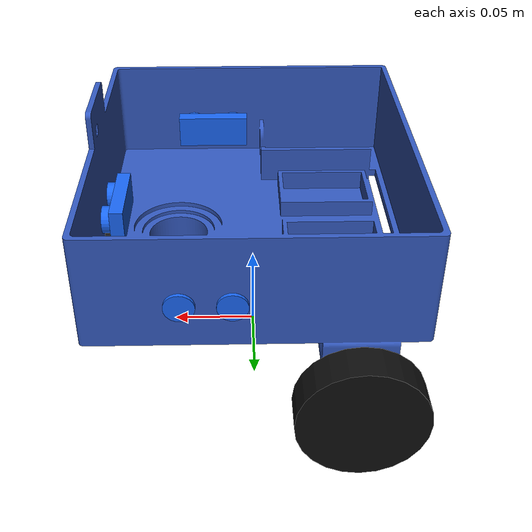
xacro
<?xml version="1.0"?>
<robot name="microbot" xmlns:xacro="http://www.ros.org/wiki/xacro">

  <!-- ===================== materials ===================== -->
  <material name="chassis_blue"><color rgba="0.20 0.35 0.75 1"/></material>
  <material name="black">       <color rgba="0.05 0.05 0.05 1"/></material>
  <material name="gray">        <color rgba="0.50 0.50 0.50 1"/></material>
  <material name="us_blue">     <color rgba="0.10 0.40 0.95 1"/></material>

  <!-- ===================== geometry constants ===================== -->
  <xacro:property name="wheel_radius" value="0.035"/>
  <xacro:property name="wheel_length" value="0.02"/>
  <!-- wheel centres in base_link: X = lateral (+X is LEFT once base_link's yaw is applied) -->
  <xacro:property name="wheel_x" value="0.1165"/>   <!-- half track  -> separation 0.233 m -->
  <xacro:property name="wheel_y" value="0.053"/>    <!-- longitudinal (behind the centre) -->
  <xacro:property name="wheel_z" value="-0.037"/>

  <!-- ===================== ground-projection root ===================== -->
  <link name="base_footprint"/>

  <!-- ===================== chassis (CAD mesh) ===================== -->
  <link name="base_link">
    <visual>
      <origin xyz="0 0 0" rpy="0 0 0"/>
      <geometry>
        <!-- mesh authored in mm -> scale to metres -->
        <mesh filename="file://$(find microbot_description)/meshes/RAJU.stl"
              scale="0.001 0.001 0.001"/>
      </geometry>
      <material name="chassis_blue"/>
    </visual>
    <collision>
      <origin xyz="0 0 0" rpy="0 0 0"/>
      <geometry>
        <mesh filename="file://$(find microbot_description)/meshes/RAJU.stl"
              scale="0.001 0.001 0.001"/>
      </geometry>
    </collision>
    <inertial>
      <origin xyz="0 0 0" rpy="0 0 0"/>
      <mass value="5.0"/>
      <inertia ixx="0.05" ixy="0" ixz="0" iyy="0.05" iyz="0" izz="0.05"/>
    </inertial>
  </link>

  <!-- the CAD's +90 deg yaw: base_link X becomes base_footprint Y -->
  <joint name="base_footprint_joint" type="fixed">
    <parent link="base_footprint"/>
    <child link="base_link"/>
    <origin xyz="0 0 0.072" rpy="0 0 1.5708"/>
  </joint>

  <!-- ===================== driven wheels ===================== -->
  <!-- axis 1 0 0 = base_link X = base_footprint +Y (left), so a POSITIVE joint angle
       rolls the robot FORWARD on both sides (standard diff-drive convention). -->
  <xacro:macro name="drive_wheel" params="link joint px">
    <link name="${link}">
      <visual>
        <origin xyz="0 0 0" rpy="0 1.570796 0"/>
        <geometry><cylinder radius="${wheel_radius}" length="${wheel_length}"/></geometry>
        <material name="black"/>
      </visual>
      <collision>
        <origin xyz="0 0 0" rpy="0 1.570796 0"/>
        <geometry><cylinder radius="${wheel_radius}" length="${wheel_length}"/></geometry>
      </collision>
      <inertial>
        <mass value="0.5"/>
        <inertia ixx="0.001" ixy="0" ixz="0" iyy="0.001" iyz="0" izz="0.001"/>
      </inertial>
    </link>
    <joint name="${joint}" type="continuous">
      <parent link="base_link"/>
      <child link="${link}"/>
      <origin xyz="${px} ${wheel_y} ${wheel_z}" rpy="0 0 0"/>
      <axis xyz="1 0 0"/>
    </joint>
  </xacro:macro>

  <!-- joint names must match the ESP32-S3 /joint_states publisher -->
  <xacro:drive_wheel link="base_back_left_wheel"  joint="base_back_left_wheel_joint"
                     px="${ wheel_x}"/>
  <xacro:drive_wheel link="base_back_right_wheel" joint="base_back_right_wheel_joint"
                     px="${-wheel_x}"/>

  <!-- ===================== front caster ball ===================== -->
  <link name="caster_wheel">
    <visual>
      <geometry><sphere radius="0.009"/></geometry>
      <material name="gray"/>
    </visual>
    <collision>
      <geometry><sphere radius="0.009"/></geometry>
    </collision>
    <inertial>
      <mass value="0.2"/>
      <inertia ixx="0.0001" ixy="0" ixz="0" iyy="0.0001" iyz="0" izz="0.0001"/>
    </inertial>
  </link>
  <joint name="caster_wheel_joint" type="fixed">
    <parent link="base_link"/>
    <child link="caster_wheel"/>
    <origin xyz="0 -0.045 -0.063" rpy="0 0 0"/>
  </joint>

  <xacro:property name="us_pitch" value="0.01316"/>   <!-- half of the 26.32 mm hole spacing -->

  <xacro:macro name="ultrasonic" params="name px py pz yaw">
    <link name="${name}">
      <!-- PCB, tucked inside the shell behind the wall -->
      <visual>
        <origin xyz="-0.012 0 0"/>
        <geometry><box size="0.008 0.045 0.020"/></geometry>
        <material name="us_blue"/>
      </visual>
      <!-- the two 16 mm transducers, seated in the two holes -->
      <visual>
        <origin xyz="-0.004 ${ us_pitch} 0" rpy="0 1.5708 0"/>
        <geometry><cylinder radius="0.008" length="0.014"/></geometry>
        <material name="us_blue"/>
      </visual>
      <visual>
        <origin xyz="-0.004 ${-us_pitch} 0" rpy="0 1.5708 0"/>
        <geometry><cylinder radius="0.008" length="0.014"/></geometry>
        <material name="us_blue"/>
      </visual>
      <inertial>
        <mass value="0.02"/>
        <inertia ixx="1e-6" ixy="0" ixz="0" iyy="1e-6" iyz="0" izz="1e-6"/>
      </inertial>
    </link>
    <joint name="${name}_joint" type="fixed">
      <parent link="base_link"/>
      <child link="${name}"/>
      <origin xyz="${px} ${py} ${pz}" rpy="0 0 ${yaw}"/>
    </joint>
  </xacro:macro>

  <!-- front: on the -Y wall, so the sensor's +X must face -Y  -> yaw -90 deg -->
  <xacro:ultrasonic name="us_front" px="0"      py="-0.090" pz="0.0139" yaw="-1.5708"/>
  <!-- left: on the +X wall, sensor +X already faces +X       -> yaw 0 -->
  <xacro:ultrasonic name="us_left"  px="0.099"  py="-0.025" pz="0.0200" yaw="0"/>
  <!-- right: on the -X wall, sensor +X must face -X          -> yaw 180 deg -->
  <xacro:ultrasonic name="us_right" px="-0.099" py="-0.025" pz="0.0200" yaw="3.14159"/>

  <link name="camera_link">
    <visual>                                   <!-- module body, behind the wall -->
      <origin xyz="-0.008 0 0"/>
      <geometry><box size="0.010 0.027 0.027"/></geometry>
      <material name="black"/>
    </visual>
    <visual>                                   <!-- lens barrel, through the wall -->
      <origin xyz="-0.001 0 0" rpy="0 1.5708 0"/>
      <geometry><cylinder radius="0.0055" length="0.008"/></geometry>
      <material name="black"/>
    </visual>
    <collision>
      <origin xyz="-0.008 0 0"/>
      <geometry><box size="0.010 0.027 0.027"/></geometry>
    </collision>
    <inertial>
      <mass value="0.05"/>
      <inertia ixx="5.21e-7" ixy="0" ixz="0" iyy="2.08e-7" iyz="0" izz="5.21e-7"/>
    </inertial>
  </link>
  <joint name="camera_joint" type="fixed">
    <parent link="base_link"/>
    <child link="camera_link"/>
    <origin xyz="0 -0.090 -0.01027" rpy="0 0 -1.5708"/>
  </joint>

  <!-- optical frame (REP-103: Z forward, X right, Y down) for image geometry -->
  <link name="camera_link_optical"/>
  <joint name="camera_optical_joint" type="fixed">
    <parent link="camera_link"/>
    <child link="camera_link_optical"/>
    <origin xyz="0 0 0" rpy="-1.5707963 0 -1.5707963"/>
  </joint>

</robot>
